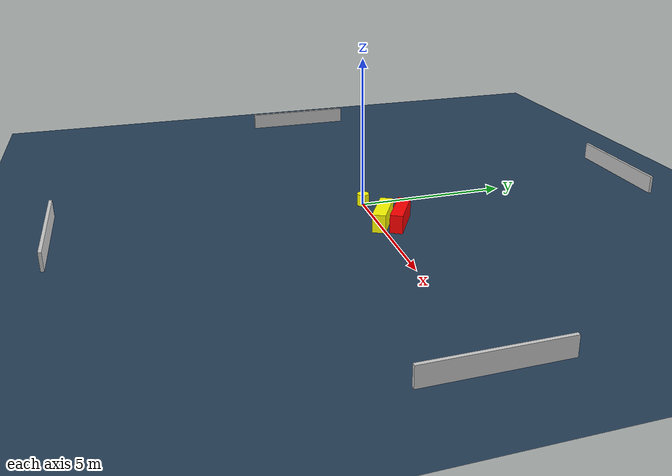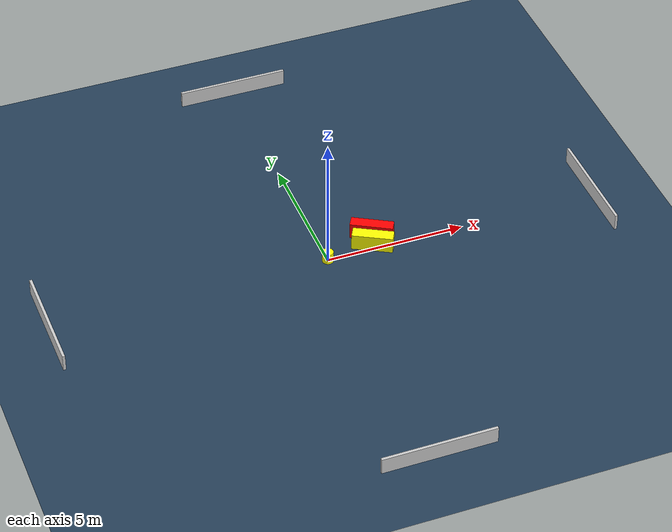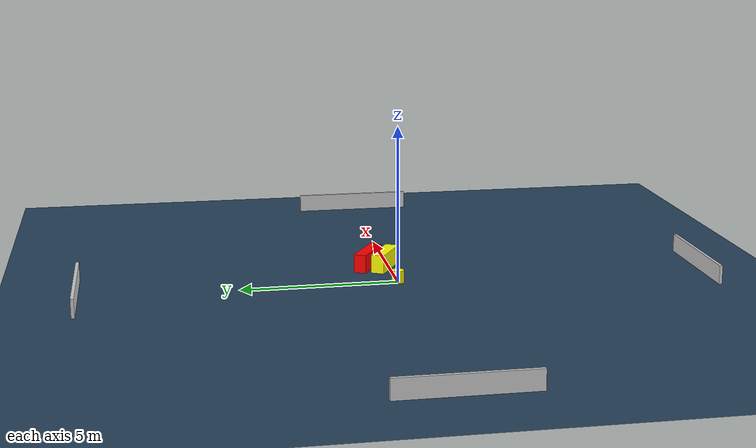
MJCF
<?xml version="1.0" ?>
<mujoco model="generated_environment">
  <option timestep="0.01" integrator="RK4" cone="elliptic"/>
  <default>
    <geom density="1"/>
  </default>
  <asset>
    <texture builtin="gradient" height="3072" name="skybox" rgb1="0.3 0.5 0.7" rgb2="0 0 0" type="skybox" width="512"/>
    <texture builtin="checker" height="300" name="groundplane" rgb1="0.2 0.3 0.4" rgb2="0.1 0.2 0.3" type="2d" width="300"/>
    <material name="groundplane" reflectance="0.2" texrepeat="5 5" texture="groundplane"/>
  </asset>
  <worldbody>
    <light dir="0 0 -1" directional="true" pos="0 0 1.5"/>
    <geom condim="3" friction="0.5 0.005 0.001" material="groundplane" name="floor" pos="0 0 0" size="0 0 0.05" type="plane"/>
    <body name="walls">
      <geom name="wall_1" condim="4" pos="-10.0 0.0 0.3" rgba="0.800000011920929 0.800000011920929 0.800000011920929 1.0" size="0.05 2.0 0.3" type="box"/>
      <geom name="wall_2" condim="4" pos="10.0 0.0 0.3" rgba="0.800000011920929 0.800000011920929 0.800000011920929 1.0" size="0.05 2.0 0.3" type="box"/>
      <geom name="wall_3" condim="4" pos="0.0 -10.0 0.3" rgba="0.800000011920929 0.800000011920929 0.800000011920929 1.0" size="2.0 0.05 0.3" type="box"/>
      <geom name="wall_4" condim="4" pos="0.0 10.0 0.3" rgba="0.800000011920929 0.800000011920929 0.800000011920929 1.0" size="2.0 0.05 0.3" type="box"/>
    </body>
    <body name="robot">
      <joint name="joint_x" type="slide" pos="0 0 0" axis="1 0 0"/>
      <joint name="joint_y" type="slide" pos="0 0 0" axis="0 1 0"/>
      <geom name="robot" type="cylinder" pos="0.0 0.0 0.2" size="0.2 0.2 0.0" mass="5.0" friction="1.0 0.005 0.0001" condim="4" rgba="1.0 1.0 0.0 1.0"/>
    </body>
    <body name="obstacle_1_movable">
      <geom name="obstacle_1_movable" condim="4" pos="1.7153651413275026 0.12971799130556744 0.3" euler="0 0 331.0798364560323" friction="0.0 0.005 0.001" rgba="1.0 1.0 0.0 1.0" size="0.7225923415860045 0.21706290741512013 0.3" type="box" mass="0.1"/>
      <joint type="free"/>
    </body>
    <body name="obstacle_2_static">
      <geom name="obstacle_2_static" condim="4" pos="1.8878919080654046 0.6601039626531309 0.3" euler="0 0 60.3011471463607" friction="0.0 0.005 0.001" rgba="1.0 0.0 0.0 1.0" size="0.20381447173277054 0.7565401254304607 0.3" type="box"/>
    </body>
  </worldbody>
  <actuator>
    <motor name="actuator_x" joint="joint_x" gear="1" ctrlrange="-1 1"/>
    <motor name="actuator_y" joint="joint_y" gear="1" ctrlrange="-1 1"/>
  </actuator>
</mujoco>
